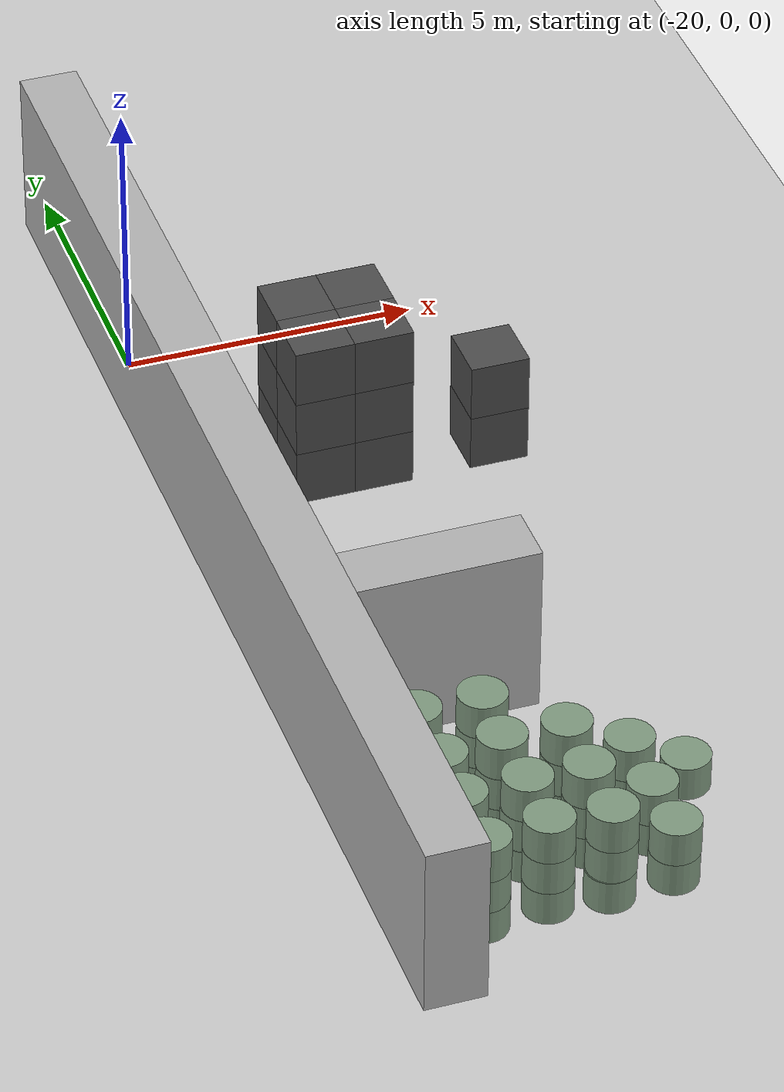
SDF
<sdf version="1.6">
 <world name="default">
  <include><uri>model://ground_plane</uri></include>
  <model name="wall_0">
   <pose>-20.0 -6.0 1.5 0 -0 0</pose>
   <static>True</static>
   <link name="link">
    <inertial>
     <mass>100</mass>
     <inertia>
      <ixx>0.166667</ixx>
      <ixy>0</ixy>
      <ixz>0</ixz>
      <iyy>0.166667</iyy>
      <iyz>0</iyz>
      <izz>0.166667</izz>
     </inertia>
    </inertial>
    <collision name="collision"><geometry><box><size>1.0 21.0 3.0</size></box></geometry></collision>
    <visual name="visual">
     <geometry><box><size>1.0 21.0 3.0</size></box></geometry>
     <material><ambient>0.7 0.7 0.7 1</ambient><diffuse>0.7 0.7 0.7 1</diffuse></material>
    </visual>
   </link>
  </model>
  <model name="wall_7">
   <pose>-18.0 -10.0 1.5 0 -0 0</pose>
   <static>True</static>
   <link name="link">
    <inertial>
     <mass>100</mass>
     <inertia>
      <ixx>0.166667</ixx>
      <ixy>0</ixy>
      <ixz>0</ixz>
      <iyy>0.166667</iyy>
      <iyz>0</iyz>
      <izz>0.166667</izz>
     </inertia>
    </inertial>
    <collision name="collision"><geometry><box><size>3.0 1.0 3.0</size></box></geometry></collision>
    <visual name="visual">
     <geometry><box><size>3.0 1.0 3.0</size></box></geometry>
     <material><ambient>0.7 0.7 0.7 1</ambient><diffuse>0.7 0.7 0.7 1</diffuse></material>
    </visual>
   </link>
  </model>
  <model name="unit_box_0">
   <pose>-18.0 -4.0 0.5 0 -0 0</pose>
   <static>True</static>
   <link name="link">
    <inertial>
     <mass>100</mass>
     <inertia>
      <ixx>0.166667</ixx>
      <ixy>0</ixy>
      <ixz>0</ixz>
      <iyy>0.166667</iyy>
      <iyz>0</iyz>
      <izz>0.166667</izz>
     </inertia>
    </inertial>
    <collision name="collision"><geometry><box><size>1.0 1.0 1.0</size></box></geometry></collision>
    <visual name="visual">
     <geometry><box><size>1.0 1.0 1.0</size></box></geometry>
     <material><ambient>0.3 0.3 0.3 1</ambient><diffuse>0.3 0.3 0.3 1</diffuse></material>
    </visual>
   </link>
  </model>
  <model name="unit_box_1">
   <pose>-18.0 -4.0 1.5 0 -0 0</pose>
   <static>True</static>
   <link name="link">
    <inertial>
     <mass>100</mass>
     <inertia>
      <ixx>0.166667</ixx>
      <ixy>0</ixy>
      <ixz>0</ixz>
      <iyy>0.166667</iyy>
      <iyz>0</iyz>
      <izz>0.166667</izz>
     </inertia>
    </inertial>
    <collision name="collision"><geometry><box><size>1.0 1.0 1.0</size></box></geometry></collision>
    <visual name="visual">
     <geometry><box><size>1.0 1.0 1.0</size></box></geometry>
     <material><ambient>0.3 0.3 0.3 1</ambient><diffuse>0.3 0.3 0.3 1</diffuse></material>
    </visual>
   </link>
  </model>
  <model name="unit_box_2">
   <pose>-18.0 -4.0 2.5 0 -0 0</pose>
   <static>True</static>
   <link name="link">
    <inertial>
     <mass>100</mass>
     <inertia>
      <ixx>0.166667</ixx>
      <ixy>0</ixy>
      <ixz>0</ixz>
      <iyy>0.166667</iyy>
      <iyz>0</iyz>
      <izz>0.166667</izz>
     </inertia>
    </inertial>
    <collision name="collision"><geometry><box><size>1.0 1.0 1.0</size></box></geometry></collision>
    <visual name="visual">
     <geometry><box><size>1.0 1.0 1.0</size></box></geometry>
     <material><ambient>0.3 0.3 0.3 1</ambient><diffuse>0.3 0.3 0.3 1</diffuse></material>
    </visual>
   </link>
  </model>
  <model name="unit_box_3">
   <pose>-18.0 -3.0 0.5 0 -0 0</pose>
   <static>True</static>
   <link name="link">
    <inertial>
     <mass>100</mass>
     <inertia>
      <ixx>0.166667</ixx>
      <ixy>0</ixy>
      <ixz>0</ixz>
      <iyy>0.166667</iyy>
      <iyz>0</iyz>
      <izz>0.166667</izz>
     </inertia>
    </inertial>
    <collision name="collision"><geometry><box><size>1.0 1.0 1.0</size></box></geometry></collision>
    <visual name="visual">
     <geometry><box><size>1.0 1.0 1.0</size></box></geometry>
     <material><ambient>0.3 0.3 0.3 1</ambient><diffuse>0.3 0.3 0.3 1</diffuse></material>
    </visual>
   </link>
  </model>
  <model name="unit_box_4">
   <pose>-18.0 -3.0 1.5 0 -0 0</pose>
   <static>True</static>
   <link name="link">
    <inertial>
     <mass>100</mass>
     <inertia>
      <ixx>0.166667</ixx>
      <ixy>0</ixy>
      <ixz>0</ixz>
      <iyy>0.166667</iyy>
      <iyz>0</iyz>
      <izz>0.166667</izz>
     </inertia>
    </inertial>
    <collision name="collision"><geometry><box><size>1.0 1.0 1.0</size></box></geometry></collision>
    <visual name="visual">
     <geometry><box><size>1.0 1.0 1.0</size></box></geometry>
     <material><ambient>0.3 0.3 0.3 1</ambient><diffuse>0.3 0.3 0.3 1</diffuse></material>
    </visual>
   </link>
  </model>
  <model name="unit_box_5">
   <pose>-18.0 -3.0 2.5 0 -0 0</pose>
   <static>True</static>
   <link name="link">
    <inertial>
     <mass>100</mass>
     <inertia>
      <ixx>0.166667</ixx>
      <ixy>0</ixy>
      <ixz>0</ixz>
      <iyy>0.166667</iyy>
      <iyz>0</iyz>
      <izz>0.166667</izz>
     </inertia>
    </inertial>
    <collision name="collision"><geometry><box><size>1.0 1.0 1.0</size></box></geometry></collision>
    <visual name="visual">
     <geometry><box><size>1.0 1.0 1.0</size></box></geometry>
     <material><ambient>0.3 0.3 0.3 1</ambient><diffuse>0.3 0.3 0.3 1</diffuse></material>
    </visual>
   </link>
  </model>
  <model name="unit_box_15">
   <pose>-17.0 -4.0 0.5 0 -0 0</pose>
   <static>True</static>
   <link name="link">
    <inertial>
     <mass>100</mass>
     <inertia>
      <ixx>0.166667</ixx>
      <ixy>0</ixy>
      <ixz>0</ixz>
      <iyy>0.166667</iyy>
      <iyz>0</iyz>
      <izz>0.166667</izz>
     </inertia>
    </inertial>
    <collision name="collision"><geometry><box><size>1.0 1.0 1.0</size></box></geometry></collision>
    <visual name="visual">
     <geometry><box><size>1.0 1.0 1.0</size></box></geometry>
     <material><ambient>0.3 0.3 0.3 1</ambient><diffuse>0.3 0.3 0.3 1</diffuse></material>
    </visual>
   </link>
  </model>
  <model name="unit_box_16">
   <pose>-17.0 -4.0 1.5 0 -0 0</pose>
   <static>True</static>
   <link name="link">
    <inertial>
     <mass>100</mass>
     <inertia>
      <ixx>0.166667</ixx>
      <ixy>0</ixy>
      <ixz>0</ixz>
      <iyy>0.166667</iyy>
      <iyz>0</iyz>
      <izz>0.166667</izz>
     </inertia>
    </inertial>
    <collision name="collision"><geometry><box><size>1.0 1.0 1.0</size></box></geometry></collision>
    <visual name="visual">
     <geometry><box><size>1.0 1.0 1.0</size></box></geometry>
     <material><ambient>0.3 0.3 0.3 1</ambient><diffuse>0.3 0.3 0.3 1</diffuse></material>
    </visual>
   </link>
  </model>
  <model name="unit_box_17">
   <pose>-17.0 -4.0 2.5 0 -0 0</pose>
   <static>True</static>
   <link name="link">
    <inertial>
     <mass>100</mass>
     <inertia>
      <ixx>0.166667</ixx>
      <ixy>0</ixy>
      <ixz>0</ixz>
      <iyy>0.166667</iyy>
      <iyz>0</iyz>
      <izz>0.166667</izz>
     </inertia>
    </inertial>
    <collision name="collision"><geometry><box><size>1.0 1.0 1.0</size></box></geometry></collision>
    <visual name="visual">
     <geometry><box><size>1.0 1.0 1.0</size></box></geometry>
     <material><ambient>0.3 0.3 0.3 1</ambient><diffuse>0.3 0.3 0.3 1</diffuse></material>
    </visual>
   </link>
  </model>
  <model name="unit_box_18">
   <pose>-17.0 -3.0 0.5 0 -0 0</pose>
   <static>True</static>
   <link name="link">
    <inertial>
     <mass>100</mass>
     <inertia>
      <ixx>0.166667</ixx>
      <ixy>0</ixy>
      <ixz>0</ixz>
      <iyy>0.166667</iyy>
      <iyz>0</iyz>
      <izz>0.166667</izz>
     </inertia>
    </inertial>
    <collision name="collision"><geometry><box><size>1.0 1.0 1.0</size></box></geometry></collision>
    <visual name="visual">
     <geometry><box><size>1.0 1.0 1.0</size></box></geometry>
     <material><ambient>0.3 0.3 0.3 1</ambient><diffuse>0.3 0.3 0.3 1</diffuse></material>
    </visual>
   </link>
  </model>
  <model name="unit_box_19">
   <pose>-17.0 -3.0 1.5 0 -0 0</pose>
   <static>True</static>
   <link name="link">
    <inertial>
     <mass>100</mass>
     <inertia>
      <ixx>0.166667</ixx>
      <ixy>0</ixy>
      <ixz>0</ixz>
      <iyy>0.166667</iyy>
      <iyz>0</iyz>
      <izz>0.166667</izz>
     </inertia>
    </inertial>
    <collision name="collision"><geometry><box><size>1.0 1.0 1.0</size></box></geometry></collision>
    <visual name="visual">
     <geometry><box><size>1.0 1.0 1.0</size></box></geometry>
     <material><ambient>0.3 0.3 0.3 1</ambient><diffuse>0.3 0.3 0.3 1</diffuse></material>
    </visual>
   </link>
  </model>
  <model name="unit_box_20">
   <pose>-17.0 -3.0 2.5 0 -0 0</pose>
   <static>True</static>
   <link name="link">
    <inertial>
     <mass>100</mass>
     <inertia>
      <ixx>0.166667</ixx>
      <ixy>0</ixy>
      <ixz>0</ixz>
      <iyy>0.166667</iyy>
      <iyz>0</iyz>
      <izz>0.166667</izz>
     </inertia>
    </inertial>
    <collision name="collision"><geometry><box><size>1.0 1.0 1.0</size></box></geometry></collision>
    <visual name="visual">
     <geometry><box><size>1.0 1.0 1.0</size></box></geometry>
     <material><ambient>0.3 0.3 0.3 1</ambient><diffuse>0.3 0.3 0.3 1</diffuse></material>
    </visual>
   </link>
  </model>
  <model name="unit_box_30">
   <pose>-15.0 -4.0 0.5 0 -0 0</pose>
   <static>True</static>
   <link name="link">
    <inertial>
     <mass>100</mass>
     <inertia>
      <ixx>0.166667</ixx>
      <ixy>0</ixy>
      <ixz>0</ixz>
      <iyy>0.166667</iyy>
      <iyz>0</iyz>
      <izz>0.166667</izz>
     </inertia>
    </inertial>
    <collision name="collision"><geometry><box><size>1.0 1.0 1.0</size></box></geometry></collision>
    <visual name="visual">
     <geometry><box><size>1.0 1.0 1.0</size></box></geometry>
     <material><ambient>0.3 0.3 0.3 1</ambient><diffuse>0.3 0.3 0.3 1</diffuse></material>
    </visual>
   </link>
  </model>
  <model name="unit_box_31">
   <pose>-15.0 -4.0 1.5 0 -0 0</pose>
   <static>True</static>
   <link name="link">
    <inertial>
     <mass>100</mass>
     <inertia>
      <ixx>0.166667</ixx>
      <ixy>0</ixy>
      <ixz>0</ixz>
      <iyy>0.166667</iyy>
      <iyz>0</iyz>
      <izz>0.166667</izz>
     </inertia>
    </inertial>
    <collision name="collision"><geometry><box><size>1.0 1.0 1.0</size></box></geometry></collision>
    <visual name="visual">
     <geometry><box><size>1.0 1.0 1.0</size></box></geometry>
     <material><ambient>0.3 0.3 0.3 1</ambient><diffuse>0.3 0.3 0.3 1</diffuse></material>
    </visual>
   </link>
  </model>
  <model name="unit_cylinder_0">
   <pose>-19.0512213308 -15.0459810844 0.3 0 -0 0</pose>
   <static>True</static>
   <link name="link">
    <inertial>
     <mass>100</mass>
     <inertia><ixx>0.145833</ixx><ixy>0</ixy><ixz>0</ixz><iyy>0.145833</iyy><iyz>0</iyz><izz>0.125</izz></inertia>
    </inertial>
    <collision name="collision">
     <geometry><cylinder><radius>0.4</radius><length>0.6</length></cylinder></geometry>
     <max_contacts>100</max_contacts>
    </collision>
    <visual name="visual">
     <geometry><cylinder><radius>0.4</radius><length>0.6</length></cylinder></geometry>
     <material><ambient>0.5 0.6 0.5 1</ambient><diffuse>0.5 0.6 0.5 1</diffuse></material>
    </visual>
   </link>
  </model>
  <model name="unit_cylinder_1">
   <pose>-19.052392666 -15.0444953493 0.9 0 -0 0</pose>
   <static>True</static>
   <link name="link">
    <inertial>
     <mass>100</mass>
     <inertia><ixx>0.145833</ixx><ixy>0</ixy><ixz>0</ixz><iyy>0.145833</iyy><iyz>0</iyz><izz>0.125</izz></inertia>
    </inertial>
    <collision name="collision">
     <geometry><cylinder><radius>0.4</radius><length>0.6</length></cylinder></geometry>
     <max_contacts>100</max_contacts>
    </collision>
    <visual name="visual">
     <geometry><cylinder><radius>0.4</radius><length>0.6</length></cylinder></geometry>
     <material><ambient>0.5 0.6 0.5 1</ambient><diffuse>0.5 0.6 0.5 1</diffuse></material>
    </visual>
   </link>
  </model>
  <model name="unit_cylinder_2">
   <pose>-19.0430294251 -15.0452152705 1.5 0 -0 0</pose>
   <static>True</static>
   <link name="link">
    <inertial>
     <mass>100</mass>
     <inertia><ixx>0.145833</ixx><ixy>0</ixy><ixz>0</ixz><iyy>0.145833</iyy><iyz>0</iyz><izz>0.125</izz></inertia>
    </inertial>
    <collision name="collision">
     <geometry><cylinder><radius>0.4</radius><length>0.6</length></cylinder></geometry>
     <max_contacts>100</max_contacts>
    </collision>
    <visual name="visual">
     <geometry><cylinder><radius>0.4</radius><length>0.6</length></cylinder></geometry>
     <material><ambient>0.5 0.6 0.5 1</ambient><diffuse>0.5 0.6 0.5 1</diffuse></material>
    </visual>
   </link>
  </model>
  <model name="unit_cylinder_3">
   <pose>-19.0434055913 -13.9950863619 0.3 0 -0 0</pose>
   <static>True</static>
   <link name="link">
    <inertial>
     <mass>100</mass>
     <inertia><ixx>0.145833</ixx><ixy>0</ixy><ixz>0</ixz><iyy>0.145833</iyy><iyz>0</iyz><izz>0.125</izz></inertia>
    </inertial>
    <collision name="collision">
     <geometry><cylinder><radius>0.4</radius><length>0.6</length></cylinder></geometry>
     <max_contacts>100</max_contacts>
    </collision>
    <visual name="visual">
     <geometry><cylinder><radius>0.4</radius><length>0.6</length></cylinder></geometry>
     <material><ambient>0.5 0.6 0.5 1</ambient><diffuse>0.5 0.6 0.5 1</diffuse></material>
    </visual>
   </link>
  </model>
  <model name="unit_cylinder_4">
   <pose>-19.0346548823 -13.9908721845 0.9 0 -0 0</pose>
   <static>True</static>
   <link name="link">
    <inertial>
     <mass>100</mass>
     <inertia><ixx>0.145833</ixx><ixy>0</ixy><ixz>0</ixz><iyy>0.145833</iyy><iyz>0</iyz><izz>0.125</izz></inertia>
    </inertial>
    <collision name="collision">
     <geometry><cylinder><radius>0.4</radius><length>0.6</length></cylinder></geometry>
     <max_contacts>100</max_contacts>
    </collision>
    <visual name="visual">
     <geometry><cylinder><radius>0.4</radius><length>0.6</length></cylinder></geometry>
     <material><ambient>0.5 0.6 0.5 1</ambient><diffuse>0.5 0.6 0.5 1</diffuse></material>
    </visual>
   </link>
  </model>
  <model name="unit_cylinder_5">
   <pose>-19.0400962363 -13.9948345199 1.5 0 -0 0</pose>
   <static>True</static>
   <link name="link">
    <inertial>
     <mass>100</mass>
     <inertia><ixx>0.145833</ixx><ixy>0</ixy><ixz>0</ixz><iyy>0.145833</iyy><iyz>0</iyz><izz>0.125</izz></inertia>
    </inertial>
    <collision name="collision">
     <geometry><cylinder><radius>0.4</radius><length>0.6</length></cylinder></geometry>
     <max_contacts>100</max_contacts>
    </collision>
    <visual name="visual">
     <geometry><cylinder><radius>0.4</radius><length>0.6</length></cylinder></geometry>
     <material><ambient>0.5 0.6 0.5 1</ambient><diffuse>0.5 0.6 0.5 1</diffuse></material>
    </visual>
   </link>
  </model>
  <model name="unit_cylinder_6">
   <pose>-19.0196719361 -13.0435579381 0.3 0 -0 0</pose>
   <static>True</static>
   <link name="link">
    <inertial>
     <mass>100</mass>
     <inertia><ixx>0.145833</ixx><ixy>0</ixy><ixz>0</ixz><iyy>0.145833</iyy><iyz>0</iyz><izz>0.125</izz></inertia>
    </inertial>
    <collision name="collision">
     <geometry><cylinder><radius>0.4</radius><length>0.6</length></cylinder></geometry>
     <max_contacts>100</max_contacts>
    </collision>
    <visual name="visual">
     <geometry><cylinder><radius>0.4</radius><length>0.6</length></cylinder></geometry>
     <material><ambient>0.5 0.6 0.5 1</ambient><diffuse>0.5 0.6 0.5 1</diffuse></material>
    </visual>
   </link>
  </model>
  <model name="unit_cylinder_7">
   <pose>-19.036692079 -13.0400733069 0.9 0 -0 0</pose>
   <static>True</static>
   <link name="link">
    <inertial>
     <mass>100</mass>
     <inertia><ixx>0.145833</ixx><ixy>0</ixy><ixz>0</ixz><iyy>0.145833</iyy><iyz>0</iyz><izz>0.125</izz></inertia>
    </inertial>
    <collision name="collision">
     <geometry><cylinder><radius>0.4</radius><length>0.6</length></cylinder></geometry>
     <max_contacts>100</max_contacts>
    </collision>
    <visual name="visual">
     <geometry><cylinder><radius>0.4</radius><length>0.6</length></cylinder></geometry>
     <material><ambient>0.5 0.6 0.5 1</ambient><diffuse>0.5 0.6 0.5 1</diffuse></material>
    </visual>
   </link>
  </model>
  <model name="unit_cylinder_8">
   <pose>-19.0200669159 -13.0545162041 1.5 0 -0 0</pose>
   <static>True</static>
   <link name="link">
    <inertial>
     <mass>100</mass>
     <inertia><ixx>0.145833</ixx><ixy>0</ixy><ixz>0</ixz><iyy>0.145833</iyy><iyz>0</iyz><izz>0.125</izz></inertia>
    </inertial>
    <collision name="collision">
     <geometry><cylinder><radius>0.4</radius><length>0.6</length></cylinder></geometry>
     <max_contacts>100</max_contacts>
    </collision>
    <visual name="visual">
     <geometry><cylinder><radius>0.4</radius><length>0.6</length></cylinder></geometry>
     <material><ambient>0.5 0.6 0.5 1</ambient><diffuse>0.5 0.6 0.5 1</diffuse></material>
    </visual>
   </link>
  </model>
  <model name="unit_cylinder_9">
   <pose>-19.0325331246 -11.9669979126 0.3 0 -0 0</pose>
   <static>True</static>
   <link name="link">
    <inertial>
     <mass>100</mass>
     <inertia><ixx>0.145833</ixx><ixy>0</ixy><ixz>0</ixz><iyy>0.145833</iyy><iyz>0</iyz><izz>0.125</izz></inertia>
    </inertial>
    <collision name="collision">
     <geometry><cylinder><radius>0.4</radius><length>0.6</length></cylinder></geometry>
     <max_contacts>100</max_contacts>
    </collision>
    <visual name="visual">
     <geometry><cylinder><radius>0.4</radius><length>0.6</length></cylinder></geometry>
     <material><ambient>0.5 0.6 0.5 1</ambient><diffuse>0.5 0.6 0.5 1</diffuse></material>
    </visual>
   </link>
  </model>
  <model name="unit_cylinder_10">
   <pose>-19.0445798756 -11.9829378674 0.9 0 -0 0</pose>
   <static>True</static>
   <link name="link">
    <inertial>
     <mass>100</mass>
     <inertia><ixx>0.145833</ixx><ixy>0</ixy><ixz>0</ixz><iyy>0.145833</iyy><iyz>0</iyz><izz>0.125</izz></inertia>
    </inertial>
    <collision name="collision">
     <geometry><cylinder><radius>0.4</radius><length>0.6</length></cylinder></geometry>
     <max_contacts>100</max_contacts>
    </collision>
    <visual name="visual">
     <geometry><cylinder><radius>0.4</radius><length>0.6</length></cylinder></geometry>
     <material><ambient>0.5 0.6 0.5 1</ambient><diffuse>0.5 0.6 0.5 1</diffuse></material>
    </visual>
   </link>
  </model>
  <model name="unit_cylinder_11">
   <pose>-19.0500524393 -11.9696792962 1.5 0 -0 0</pose>
   <static>True</static>
   <link name="link">
    <inertial>
     <mass>100</mass>
     <inertia><ixx>0.145833</ixx><ixy>0</ixy><ixz>0</ixz><iyy>0.145833</iyy><iyz>0</iyz><izz>0.125</izz></inertia>
    </inertial>
    <collision name="collision">
     <geometry><cylinder><radius>0.4</radius><length>0.6</length></cylinder></geometry>
     <max_contacts>100</max_contacts>
    </collision>
    <visual name="visual">
     <geometry><cylinder><radius>0.4</radius><length>0.6</length></cylinder></geometry>
     <material><ambient>0.5 0.6 0.5 1</ambient><diffuse>0.5 0.6 0.5 1</diffuse></material>
    </visual>
   </link>
  </model>
  <model name="unit_cylinder_12">
   <pose>-18.0006058287 -14.9543718583 0.3 0 -0 0</pose>
   <static>True</static>
   <link name="link">
    <inertial>
     <mass>100</mass>
     <inertia><ixx>0.145833</ixx><ixy>0</ixy><ixz>0</ixz><iyy>0.145833</iyy><iyz>0</iyz><izz>0.125</izz></inertia>
    </inertial>
    <collision name="collision">
     <geometry><cylinder><radius>0.4</radius><length>0.6</length></cylinder></geometry>
     <max_contacts>100</max_contacts>
    </collision>
    <visual name="visual">
     <geometry><cylinder><radius>0.4</radius><length>0.6</length></cylinder></geometry>
     <material><ambient>0.5 0.6 0.5 1</ambient><diffuse>0.5 0.6 0.5 1</diffuse></material>
    </visual>
   </link>
  </model>
  <model name="unit_cylinder_13">
   <pose>-18.0063360898 -14.9535447548 0.9 0 -0 0</pose>
   <static>True</static>
   <link name="link">
    <inertial>
     <mass>100</mass>
     <inertia><ixx>0.145833</ixx><ixy>0</ixy><ixz>0</ixz><iyy>0.145833</iyy><iyz>0</iyz><izz>0.125</izz></inertia>
    </inertial>
    <collision name="collision">
     <geometry><cylinder><radius>0.4</radius><length>0.6</length></cylinder></geometry>
     <max_contacts>100</max_contacts>
    </collision>
    <visual name="visual">
     <geometry><cylinder><radius>0.4</radius><length>0.6</length></cylinder></geometry>
     <material><ambient>0.5 0.6 0.5 1</ambient><diffuse>0.5 0.6 0.5 1</diffuse></material>
    </visual>
   </link>
  </model>
  <model name="unit_cylinder_14">
   <pose>-18.0094836295 -14.9525448371 1.5 0 -0 0</pose>
   <static>True</static>
   <link name="link">
    <inertial>
     <mass>100</mass>
     <inertia><ixx>0.145833</ixx><ixy>0</ixy><ixz>0</ixz><iyy>0.145833</iyy><iyz>0</iyz><izz>0.125</izz></inertia>
    </inertial>
    <collision name="collision">
     <geometry><cylinder><radius>0.4</radius><length>0.6</length></cylinder></geometry>
     <max_contacts>100</max_contacts>
    </collision>
    <visual name="visual">
     <geometry><cylinder><radius>0.4</radius><length>0.6</length></cylinder></geometry>
     <material><ambient>0.5 0.6 0.5 1</ambient><diffuse>0.5 0.6 0.5 1</diffuse></material>
    </visual>
   </link>
  </model>
  <model name="unit_cylinder_15">
   <pose>-17.9970607896 -13.9866459084 0.3 0 -0 0</pose>
   <static>True</static>
   <link name="link">
    <inertial>
     <mass>100</mass>
     <inertia><ixx>0.145833</ixx><ixy>0</ixy><ixz>0</ixz><iyy>0.145833</iyy><iyz>0</iyz><izz>0.125</izz></inertia>
    </inertial>
    <collision name="collision">
     <geometry><cylinder><radius>0.4</radius><length>0.6</length></cylinder></geometry>
     <max_contacts>100</max_contacts>
    </collision>
    <visual name="visual">
     <geometry><cylinder><radius>0.4</radius><length>0.6</length></cylinder></geometry>
     <material><ambient>0.5 0.6 0.5 1</ambient><diffuse>0.5 0.6 0.5 1</diffuse></material>
    </visual>
   </link>
  </model>
  <model name="unit_cylinder_16">
   <pose>-17.9987405952 -13.9740035689 0.9 0 -0 0</pose>
   <static>True</static>
   <link name="link">
    <inertial>
     <mass>100</mass>
     <inertia><ixx>0.145833</ixx><ixy>0</ixy><ixz>0</ixz><iyy>0.145833</iyy><iyz>0</iyz><izz>0.125</izz></inertia>
    </inertial>
    <collision name="collision">
     <geometry><cylinder><radius>0.4</radius><length>0.6</length></cylinder></geometry>
     <max_contacts>100</max_contacts>
    </collision>
    <visual name="visual">
     <geometry><cylinder><radius>0.4</radius><length>0.6</length></cylinder></geometry>
     <material><ambient>0.5 0.6 0.5 1</ambient><diffuse>0.5 0.6 0.5 1</diffuse></material>
    </visual>
   </link>
  </model>
  <model name="unit_cylinder_17">
   <pose>-17.9939980191 -13.976829864 1.5 0 -0 0</pose>
   <static>True</static>
   <link name="link">
    <inertial>
     <mass>100</mass>
     <inertia><ixx>0.145833</ixx><ixy>0</ixy><ixz>0</ixz><iyy>0.145833</iyy><iyz>0</iyz><izz>0.125</izz></inertia>
    </inertial>
    <collision name="collision">
     <geometry><cylinder><radius>0.4</radius><length>0.6</length></cylinder></geometry>
     <max_contacts>100</max_contacts>
    </collision>
    <visual name="visual">
     <geometry><cylinder><radius>0.4</radius><length>0.6</length></cylinder></geometry>
     <material><ambient>0.5 0.6 0.5 1</ambient><diffuse>0.5 0.6 0.5 1</diffuse></material>
    </visual>
   </link>
  </model>
  <model name="unit_cylinder_18">
   <pose>-18.0175866783 -12.9506124332 0.3 0 -0 0</pose>
   <static>True</static>
   <link name="link">
    <inertial>
     <mass>100</mass>
     <inertia><ixx>0.145833</ixx><ixy>0</ixy><ixz>0</ixz><iyy>0.145833</iyy><iyz>0</iyz><izz>0.125</izz></inertia>
    </inertial>
    <collision name="collision">
     <geometry><cylinder><radius>0.4</radius><length>0.6</length></cylinder></geometry>
     <max_contacts>100</max_contacts>
    </collision>
    <visual name="visual">
     <geometry><cylinder><radius>0.4</radius><length>0.6</length></cylinder></geometry>
     <material><ambient>0.5 0.6 0.5 1</ambient><diffuse>0.5 0.6 0.5 1</diffuse></material>
    </visual>
   </link>
  </model>
  <model name="unit_cylinder_19">
   <pose>-18.026196208 -12.9611441332 0.9 0 -0 0</pose>
   <static>True</static>
   <link name="link">
    <inertial>
     <mass>100</mass>
     <inertia><ixx>0.145833</ixx><ixy>0</ixy><ixz>0</ixz><iyy>0.145833</iyy><iyz>0</iyz><izz>0.125</izz></inertia>
    </inertial>
    <collision name="collision">
     <geometry><cylinder><radius>0.4</radius><length>0.6</length></cylinder></geometry>
     <max_contacts>100</max_contacts>
    </collision>
    <visual name="visual">
     <geometry><cylinder><radius>0.4</radius><length>0.6</length></cylinder></geometry>
     <material><ambient>0.5 0.6 0.5 1</ambient><diffuse>0.5 0.6 0.5 1</diffuse></material>
    </visual>
   </link>
  </model>
  <model name="unit_cylinder_20">
   <pose>-18.0295998962 -12.9514281495 1.5 0 -0 0</pose>
   <static>True</static>
   <link name="link">
    <inertial>
     <mass>100</mass>
     <inertia><ixx>0.145833</ixx><ixy>0</ixy><ixz>0</ixz><iyy>0.145833</iyy><iyz>0</iyz><izz>0.125</izz></inertia>
    </inertial>
    <collision name="collision">
     <geometry><cylinder><radius>0.4</radius><length>0.6</length></cylinder></geometry>
     <max_contacts>100</max_contacts>
    </collision>
    <visual name="visual">
     <geometry><cylinder><radius>0.4</radius><length>0.6</length></cylinder></geometry>
     <material><ambient>0.5 0.6 0.5 1</ambient><diffuse>0.5 0.6 0.5 1</diffuse></material>
    </visual>
   </link>
  </model>
  <model name="unit_cylinder_21">
   <pose>-17.9886878759 -11.9709751769 0.3 0 -0 0</pose>
   <static>True</static>
   <link name="link">
    <inertial>
     <mass>100</mass>
     <inertia><ixx>0.145833</ixx><ixy>0</ixy><ixz>0</ixz><iyy>0.145833</iyy><iyz>0</iyz><izz>0.125</izz></inertia>
    </inertial>
    <collision name="collision">
     <geometry><cylinder><radius>0.4</radius><length>0.6</length></cylinder></geometry>
     <max_contacts>100</max_contacts>
    </collision>
    <visual name="visual">
     <geometry><cylinder><radius>0.4</radius><length>0.6</length></cylinder></geometry>
     <material><ambient>0.5 0.6 0.5 1</ambient><diffuse>0.5 0.6 0.5 1</diffuse></material>
    </visual>
   </link>
  </model>
  <model name="unit_cylinder_22">
   <pose>-17.9845047075 -11.9703815724 0.9 0 -0 0</pose>
   <static>True</static>
   <link name="link">
    <inertial>
     <mass>100</mass>
     <inertia><ixx>0.145833</ixx><ixy>0</ixy><ixz>0</ixz><iyy>0.145833</iyy><iyz>0</iyz><izz>0.125</izz></inertia>
    </inertial>
    <collision name="collision">
     <geometry><cylinder><radius>0.4</radius><length>0.6</length></cylinder></geometry>
     <max_contacts>100</max_contacts>
    </collision>
    <visual name="visual">
     <geometry><cylinder><radius>0.4</radius><length>0.6</length></cylinder></geometry>
     <material><ambient>0.5 0.6 0.5 1</ambient><diffuse>0.5 0.6 0.5 1</diffuse></material>
    </visual>
   </link>
  </model>
  <model name="unit_cylinder_23">
   <pose>-17.9891933731 -11.9682186036 1.5 0 -0 0</pose>
   <static>True</static>
   <link name="link">
    <inertial>
     <mass>100</mass>
     <inertia><ixx>0.145833</ixx><ixy>0</ixy><ixz>0</ixz><iyy>0.145833</iyy><iyz>0</iyz><izz>0.125</izz></inertia>
    </inertial>
    <collision name="collision">
     <geometry><cylinder><radius>0.4</radius><length>0.6</length></cylinder></geometry>
     <max_contacts>100</max_contacts>
    </collision>
    <visual name="visual">
     <geometry><cylinder><radius>0.4</radius><length>0.6</length></cylinder></geometry>
     <material><ambient>0.5 0.6 0.5 1</ambient><diffuse>0.5 0.6 0.5 1</diffuse></material>
    </visual>
   </link>
  </model>
  <model name="unit_cylinder_24">
   <pose>-17.0483958623 -15.0350979579 0.3 0 -0 0</pose>
   <static>True</static>
   <link name="link">
    <inertial>
     <mass>100</mass>
     <inertia><ixx>0.145833</ixx><ixy>0</ixy><ixz>0</ixz><iyy>0.145833</iyy><iyz>0</iyz><izz>0.125</izz></inertia>
    </inertial>
    <collision name="collision">
     <geometry><cylinder><radius>0.4</radius><length>0.6</length></cylinder></geometry>
     <max_contacts>100</max_contacts>
    </collision>
    <visual name="visual">
     <geometry><cylinder><radius>0.4</radius><length>0.6</length></cylinder></geometry>
     <material><ambient>0.5 0.6 0.5 1</ambient><diffuse>0.5 0.6 0.5 1</diffuse></material>
    </visual>
   </link>
  </model>
  <model name="unit_cylinder_25">
   <pose>-17.032113038 -15.0228370988 0.9 0 -0 0</pose>
   <static>True</static>
   <link name="link">
    <inertial>
     <mass>100</mass>
     <inertia><ixx>0.145833</ixx><ixy>0</ixy><ixz>0</ixz><iyy>0.145833</iyy><iyz>0</iyz><izz>0.125</izz></inertia>
    </inertial>
    <collision name="collision">
     <geometry><cylinder><radius>0.4</radius><length>0.6</length></cylinder></geometry>
     <max_contacts>100</max_contacts>
    </collision>
    <visual name="visual">
     <geometry><cylinder><radius>0.4</radius><length>0.6</length></cylinder></geometry>
     <material><ambient>0.5 0.6 0.5 1</ambient><diffuse>0.5 0.6 0.5 1</diffuse></material>
    </visual>
   </link>
  </model>
  <model name="unit_cylinder_26">
   <pose>-17.0359071344 -15.0305189913 1.5 0 -0 0</pose>
   <static>True</static>
   <link name="link">
    <inertial>
     <mass>100</mass>
     <inertia><ixx>0.145833</ixx><ixy>0</ixy><ixz>0</ixz><iyy>0.145833</iyy><iyz>0</iyz><izz>0.125</izz></inertia>
    </inertial>
    <collision name="collision">
     <geometry><cylinder><radius>0.4</radius><length>0.6</length></cylinder></geometry>
     <max_contacts>100</max_contacts>
    </collision>
    <visual name="visual">
     <geometry><cylinder><radius>0.4</radius><length>0.6</length></cylinder></geometry>
     <material><ambient>0.5 0.6 0.5 1</ambient><diffuse>0.5 0.6 0.5 1</diffuse></material>
    </visual>
   </link>
  </model>
  <model name="unit_cylinder_27">
   <pose>-17.0141735062 -13.9862823408 0.3 0 -0 0</pose>
   <static>True</static>
   <link name="link">
    <inertial>
     <mass>100</mass>
     <inertia><ixx>0.145833</ixx><ixy>0</ixy><ixz>0</ixz><iyy>0.145833</iyy><iyz>0</iyz><izz>0.125</izz></inertia>
    </inertial>
    <collision name="collision">
     <geometry><cylinder><radius>0.4</radius><length>0.6</length></cylinder></geometry>
     <max_contacts>100</max_contacts>
    </collision>
    <visual name="visual">
     <geometry><cylinder><radius>0.4</radius><length>0.6</length></cylinder></geometry>
     <material><ambient>0.5 0.6 0.5 1</ambient><diffuse>0.5 0.6 0.5 1</diffuse></material>
    </visual>
   </link>
  </model>
  <model name="unit_cylinder_28">
   <pose>-17.0228907728 -13.9900386981 0.9 0 -0 0</pose>
   <static>True</static>
   <link name="link">
    <inertial>
     <mass>100</mass>
     <inertia><ixx>0.145833</ixx><ixy>0</ixy><ixz>0</ixz><iyy>0.145833</iyy><iyz>0</iyz><izz>0.125</izz></inertia>
    </inertial>
    <collision name="collision">
     <geometry><cylinder><radius>0.4</radius><length>0.6</length></cylinder></geometry>
     <max_contacts>100</max_contacts>
    </collision>
    <visual name="visual">
     <geometry><cylinder><radius>0.4</radius><length>0.6</length></cylinder></geometry>
     <material><ambient>0.5 0.6 0.5 1</ambient><diffuse>0.5 0.6 0.5 1</diffuse></material>
    </visual>
   </link>
  </model>
  <model name="unit_cylinder_29">
   <pose>-17.0289768308 -13.9963810038 1.5 0 -0 0</pose>
   <static>True</static>
   <link name="link">
    <inertial>
     <mass>100</mass>
     <inertia><ixx>0.145833</ixx><ixy>0</ixy><ixz>0</ixz><iyy>0.145833</iyy><iyz>0</iyz><izz>0.125</izz></inertia>
    </inertial>
    <collision name="collision">
     <geometry><cylinder><radius>0.4</radius><length>0.6</length></cylinder></geometry>
     <max_contacts>100</max_contacts>
    </collision>
    <visual name="visual">
     <geometry><cylinder><radius>0.4</radius><length>0.6</length></cylinder></geometry>
     <material><ambient>0.5 0.6 0.5 1</ambient><diffuse>0.5 0.6 0.5 1</diffuse></material>
    </visual>
   </link>
  </model>
  <model name="unit_cylinder_30">
   <pose>-17.01320852 -12.9851578363 0.3 0 -0 0</pose>
   <static>True</static>
   <link name="link">
    <inertial>
     <mass>100</mass>
     <inertia><ixx>0.145833</ixx><ixy>0</ixy><ixz>0</ixz><iyy>0.145833</iyy><iyz>0</iyz><izz>0.125</izz></inertia>
    </inertial>
    <collision name="collision">
     <geometry><cylinder><radius>0.4</radius><length>0.6</length></cylinder></geometry>
     <max_contacts>100</max_contacts>
    </collision>
    <visual name="visual">
     <geometry><cylinder><radius>0.4</radius><length>0.6</length></cylinder></geometry>
     <material><ambient>0.5 0.6 0.5 1</ambient><diffuse>0.5 0.6 0.5 1</diffuse></material>
    </visual>
   </link>
  </model>
  <model name="unit_cylinder_31">
   <pose>-17.0035357939 -12.9777372958 0.9 0 -0 0</pose>
   <static>True</static>
   <link name="link">
    <inertial>
     <mass>100</mass>
     <inertia><ixx>0.145833</ixx><ixy>0</ixy><ixz>0</ixz><iyy>0.145833</iyy><iyz>0</iyz><izz>0.125</izz></inertia>
    </inertial>
    <collision name="collision">
     <geometry><cylinder><radius>0.4</radius><length>0.6</length></cylinder></geometry>
     <max_contacts>100</max_contacts>
    </collision>
    <visual name="visual">
     <geometry><cylinder><radius>0.4</radius><length>0.6</length></cylinder></geometry>
     <material><ambient>0.5 0.6 0.5 1</ambient><diffuse>0.5 0.6 0.5 1</diffuse></material>
    </visual>
   </link>
  </model>
  <model name="unit_cylinder_32">
   <pose>-17.0019389739 -12.9786132778 1.5 0 -0 0</pose>
   <static>True</static>
   <link name="link">
    <inertial>
     <mass>100</mass>
     <inertia><ixx>0.145833</ixx><ixy>0</ixy><ixz>0</ixz><iyy>0.145833</iyy><iyz>0</iyz><izz>0.125</izz></inertia>
    </inertial>
    <collision name="collision">
     <geometry><cylinder><radius>0.4</radius><length>0.6</length></cylinder></geometry>
     <max_contacts>100</max_contacts>
    </collision>
    <visual name="visual">
     <geometry><cylinder><radius>0.4</radius><length>0.6</length></cylinder></geometry>
     <material><ambient>0.5 0.6 0.5 1</ambient><diffuse>0.5 0.6 0.5 1</diffuse></material>
    </visual>
   </link>
  </model>
  <model name="unit_cylinder_33">
   <pose>-15.9916175034 -14.9563617394 0.3 0 -0 0</pose>
   <static>True</static>
   <link name="link">
    <inertial>
     <mass>100</mass>
     <inertia><ixx>0.145833</ixx><ixy>0</ixy><ixz>0</ixz><iyy>0.145833</iyy><iyz>0</iyz><izz>0.125</izz></inertia>
    </inertial>
    <collision name="collision">
     <geometry><cylinder><radius>0.4</radius><length>0.6</length></cylinder></geometry>
     <max_contacts>100</max_contacts>
    </collision>
    <visual name="visual">
     <geometry><cylinder><radius>0.4</radius><length>0.6</length></cylinder></geometry>
     <material><ambient>0.5 0.6 0.5 1</ambient><diffuse>0.5 0.6 0.5 1</diffuse></material>
    </visual>
   </link>
  </model>
  <model name="unit_cylinder_34">
   <pose>-15.9898761976 -14.9700881674 0.9 0 -0 0</pose>
   <static>True</static>
   <link name="link">
    <inertial>
     <mass>100</mass>
     <inertia><ixx>0.145833</ixx><ixy>0</ixy><ixz>0</ixz><iyy>0.145833</iyy><iyz>0</iyz><izz>0.125</izz></inertia>
    </inertial>
    <collision name="collision">
     <geometry><cylinder><radius>0.4</radius><length>0.6</length></cylinder></geometry>
     <max_contacts>100</max_contacts>
    </collision>
    <visual name="visual">
     <geometry><cylinder><radius>0.4</radius><length>0.6</length></cylinder></geometry>
     <material><ambient>0.5 0.6 0.5 1</ambient><diffuse>0.5 0.6 0.5 1</diffuse></material>
    </visual>
   </link>
  </model>
  <model name="unit_cylinder_35">
   <pose>-16.002640513 -14.0246579547 0.3 0 -0 0</pose>
   <static>True</static>
   <link name="link">
    <inertial>
     <mass>100</mass>
     <inertia><ixx>0.145833</ixx><ixy>0</ixy><ixz>0</ixz><iyy>0.145833</iyy><iyz>0</iyz><izz>0.125</izz></inertia>
    </inertial>
    <collision name="collision">
     <geometry><cylinder><radius>0.4</radius><length>0.6</length></cylinder></geometry>
     <max_contacts>100</max_contacts>
    </collision>
    <visual name="visual">
     <geometry><cylinder><radius>0.4</radius><length>0.6</length></cylinder></geometry>
     <material><ambient>0.5 0.6 0.5 1</ambient><diffuse>0.5 0.6 0.5 1</diffuse></material>
    </visual>
   </link>
  </model>
  <model name="unit_cylinder_36">
   <pose>-16.003701774 -14.0255523648 0.9 0 -0 0</pose>
   <static>True</static>
   <link name="link">
    <inertial>
     <mass>100</mass>
     <inertia><ixx>0.145833</ixx><ixy>0</ixy><ixz>0</ixz><iyy>0.145833</iyy><iyz>0</iyz><izz>0.125</izz></inertia>
    </inertial>
    <collision name="collision">
     <geometry><cylinder><radius>0.4</radius><length>0.6</length></cylinder></geometry>
     <max_contacts>100</max_contacts>
    </collision>
    <visual name="visual">
     <geometry><cylinder><radius>0.4</radius><length>0.6</length></cylinder></geometry>
     <material><ambient>0.5 0.6 0.5 1</ambient><diffuse>0.5 0.6 0.5 1</diffuse></material>
    </visual>
   </link>
  </model>
  <model name="unit_cylinder_37">
   <pose>-15.9679956813 -12.9597387283 0.3 0 -0 0</pose>
   <static>True</static>
   <link name="link">
    <inertial>
     <mass>100</mass>
     <inertia><ixx>0.145833</ixx><ixy>0</ixy><ixz>0</ixz><iyy>0.145833</iyy><iyz>0</iyz><izz>0.125</izz></inertia>
    </inertial>
    <collision name="collision">
     <geometry><cylinder><radius>0.4</radius><length>0.6</length></cylinder></geometry>
     <max_contacts>100</max_contacts>
    </collision>
    <visual name="visual">
     <geometry><cylinder><radius>0.4</radius><length>0.6</length></cylinder></geometry>
     <material><ambient>0.5 0.6 0.5 1</ambient><diffuse>0.5 0.6 0.5 1</diffuse></material>
    </visual>
   </link>
  </model>
  <model name="unit_cylinder_38">
   <pose>-15.9700930751 -12.9688635618 0.9 0 -0 0</pose>
   <static>True</static>
   <link name="link">
    <inertial>
     <mass>100</mass>
     <inertia><ixx>0.145833</ixx><ixy>0</ixy><ixz>0</ixz><iyy>0.145833</iyy><iyz>0</iyz><izz>0.125</izz></inertia>
    </inertial>
    <collision name="collision">
     <geometry><cylinder><radius>0.4</radius><length>0.6</length></cylinder></geometry>
     <max_contacts>100</max_contacts>
    </collision>
    <visual name="visual">
     <geometry><cylinder><radius>0.4</radius><length>0.6</length></cylinder></geometry>
     <material><ambient>0.5 0.6 0.5 1</ambient><diffuse>0.5 0.6 0.5 1</diffuse></material>
    </visual>
   </link>
  </model>
  <model name="unit_cylinder_41">
   <pose>-15.037019896 -12.9864356127 0.3 0 -0 0</pose>
   <static>True</static>
   <link name="link">
    <inertial>
     <mass>100</mass>
     <inertia><ixx>0.145833</ixx><ixy>0</ixy><ixz>0</ixz><iyy>0.145833</iyy><iyz>0</iyz><izz>0.125</izz></inertia>
    </inertial>
    <collision name="collision">
     <geometry><cylinder><radius>0.4</radius><length>0.6</length></cylinder></geometry>
     <max_contacts>100</max_contacts>
    </collision>
    <visual name="visual">
     <geometry><cylinder><radius>0.4</radius><length>0.6</length></cylinder></geometry>
     <material><ambient>0.5 0.6 0.5 1</ambient><diffuse>0.5 0.6 0.5 1</diffuse></material>
    </visual>
   </link>
  </model>
 </world>
</sdf>
